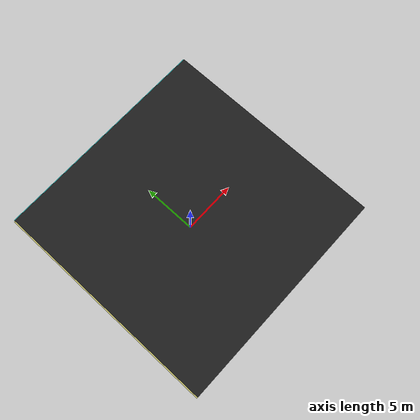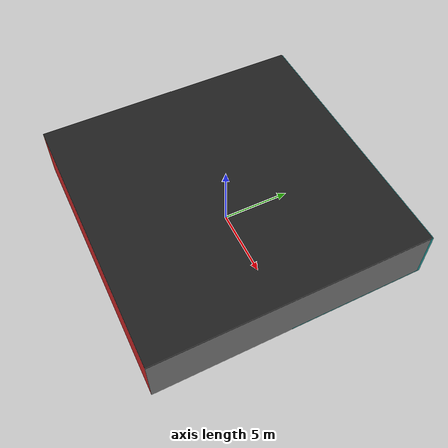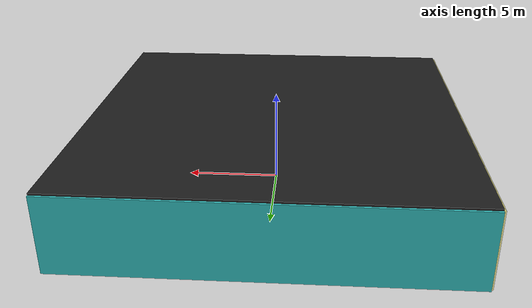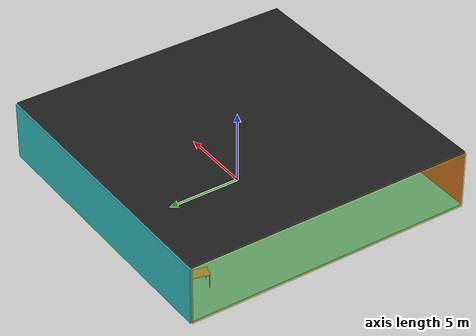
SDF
<sdf version="1.4">
 <world name="default">
  <physics type="ode">
   <max_step_size>0.001</max_step_size>
   <real_time_factor>1</real_time_factor>
   <real_time_update_rate>1000</real_time_update_rate>
   <gravity>0 0 -9.8</gravity>
  </physics>
  <scene><ambient>0.4 0.4 0.4 1</ambient><background>0.7 0.7 0.7 1</background><shadows>1</shadows></scene>
  <model name="Surrounding">
   <static>1</static>
   <link name="Ceiling">
    <collision name="Ceiling_Collision"><geometry><box><size>20 20 0.1</size></box></geometry></collision>
    <visual name="Ceiling_Visual">
     <geometry><box><size>20 20 0.1</size></box></geometry>
     <material>
      <script><uri>file://media/materials/scripts/gazebo.material</uri><name>Gazebo/FlatBlack</name></script>
     </material>
    </visual>
    <pose>0 0 4.05 0 0 0</pose>
   </link>
   <link name="Wall_South">
    <collision name="Wall_South_Collision">
     <geometry><box><size>20 0 4</size></box></geometry>
     <pose>0 0 2 0 -0 0</pose>
    </collision>
    <visual name="Wall_South_Visual">
     <pose>0 0 2 0 -0 0</pose>
     <geometry><box><size>20 0 4</size></box></geometry>
     <material>
      <script><uri>file://media/materials/scripts/gazebo.material</uri><name>Gazebo/RedGlow</name></script>
     </material>
    </visual>
    <velocity_decay><linear>0</linear><angular>0</angular></velocity_decay>
    <pose>0 -10 0 0 -0 0</pose>
   </link>
   <link name="Wall_East">
    <collision name="Wall_21_Collision">
     <geometry><box><size>20 0 4</size></box></geometry>
     <pose>0 0 2 0 -0 0</pose>
    </collision>
    <visual name="Wall_21_Visual">
     <pose>0 0 2 0 -0 0</pose>
     <geometry><box><size>20 0 4</size></box></geometry>
     <material>
      <script><uri>file://media/materials/scripts/gazebo.material</uri><name>Gazebo/GreyGradientSky</name></script>
     </material>
    </visual>
    <velocity_decay><linear>0</linear><angular>0</angular></velocity_decay>
    <pose>10 0 0 0 -0 1.5708</pose>
   </link>
   <link name="Wall_North">
    <collision name="Wall_22_Collision">
     <geometry><box><size>20 0.2 4</size></box></geometry>
     <pose>0 0 2 0 -0 0</pose>
    </collision>
    <visual name="Wall_22_Visual">
     <pose>0 0 2 0 -0 0</pose>
     <geometry><box><size>20 0.2 4</size></box></geometry>
     <material>
      <script><uri>file://media/materials/scripts/gazebo.material</uri><name>Gazebo/TurquoiseGlow</name></script>
     </material>
    </visual>
    <velocity_decay><linear>0</linear><angular>0</angular></velocity_decay>
    <pose>0 10 0 0 -0 0</pose>
   </link>
   <link name="Wall_West">
    <collision name="Wall_23_Collision">
     <geometry><box><size>20 0.2 4</size></box></geometry>
     <pose>0 0 2 0 -0 0</pose>
    </collision>
    <visual name="Wall_23_Visual">
     <pose>0 0 2 0 -0 0</pose>
     <geometry><box><size>20 0.2 4</size></box></geometry>
     <material>
      <script>
       <uri>file://media/materials/scripts/gazebo.material</uri>
       <name>Gazebo/YellowTransparent</name>
      </script>
     </material>
    </visual>
    <velocity_decay><linear>0</linear><angular>0</angular></velocity_decay>
    <pose>-10 0 0 0 0 -1.5708</pose>
   </link>
   <link name="Ground_link">
    <collision name="collision">
     <pose>0 0 .05 0 -0 0</pose>
     <geometry><box><size>20 20 0.1</size></box></geometry>
    </collision>
    <visual name="visual">
     <pose>0 0 .05 0 -0 0</pose>
     <geometry><box><size>20 20 0.1</size></box></geometry>
     <material>
      <script><uri>file://media/materials/scripts/gazebo.material</uri><name>Gazebo/TurquoiseGlow</name></script>
     </material>
    </visual>
   </link>
   <static>1</static>
  </model>
  <spherical_coordinates>
   <surface_model>EARTH_WGS84</surface_model>
   <latitude_deg>0</latitude_deg>
   <longitude_deg>0</longitude_deg>
   <elevation>0</elevation>
   <heading_deg>0</heading_deg>
  </spherical_coordinates>
  <light name="lightball_0" type="diffuse">
   <diffuse>0.8 0.8 0.8 1</diffuse>
   <specular>0.2 0.2 0.2 1</specular>
   <attenuation>
    <range>100</range>
    <constant>0.7</constant>
    <linear>0.01</linear>
    <quadratic>0.001</quadratic>
   </attenuation>
   <direction>-0.5 0.1 -0.9</direction>
   <pose>9.70963170075 6.9323993567 3.51747398623 0 0 0</pose>
  </light>
  <light name="lightball_1" type="diffuse">
   <diffuse>0.8 0.8 0.8 1</diffuse>
   <specular>0.2 0.2 0.2 1</specular>
   <attenuation>
    <range>100</range>
    <constant>0.7</constant>
    <linear>0.01</linear>
    <quadratic>0.001</quadratic>
   </attenuation>
   <direction>-0.5 0.1 -0.9</direction>
   <pose>-4.60195455969 -6.10732544751 2.39261892999 0 0 0</pose>
  </light>
  <light name="lightball_2" type="diffuse">
   <diffuse>0.8 0.8 0.8 1</diffuse>
   <specular>0.2 0.2 0.2 1</specular>
   <attenuation>
    <range>100</range>
    <constant>0.7</constant>
    <linear>0.01</linear>
    <quadratic>0.001</quadratic>
   </attenuation>
   <direction>-0.5 0.1 -0.9</direction>
   <pose>9.30337010018 7.30080217147 0.97101041877 0 0 0</pose>
  </light>
  <light name="lightball_3" type="diffuse">
   <diffuse>0.8 0.8 0.8 1</diffuse>
   <specular>0.2 0.2 0.2 1</specular>
   <attenuation>
    <range>100</range>
    <constant>0.7</constant>
    <linear>0.01</linear>
    <quadratic>0.001</quadratic>
   </attenuation>
   <direction>-0.5 0.1 -0.9</direction>
   <pose>0.526286571566 4.36188959171 1.07540431991 0 0 0</pose>
  </light>
  <light name="lightball_4" type="diffuse">
   <diffuse>0.8 0.8 0.8 1</diffuse>
   <specular>0.2 0.2 0.2 1</specular>
   <attenuation>
    <range>100</range>
    <constant>0.7</constant>
    <linear>0.01</linear>
    <quadratic>0.001</quadratic>
   </attenuation>
   <direction>-0.5 0.1 -0.9</direction>
   <pose>6.04631433249 2.47038029029 2.5782163434 0 0 0</pose>
  </light>
  <include><uri>model://table</uri><pose>-7.39359258069 7.93746692569 0 0 0 1.2858425754</pose></include>
  <include><uri>model://cabinet</uri><pose>-0.896469686574 -4.53317769924 0 0 0 0.776828707194</pose></include>
  <include>
   <uri>model://textured_shapes</uri>
   <pose>1.29131511537 6.89855449184 0 0 0 1.982610005</pose>
  </include>
  <include>
   <uri>model://construction_cone</uri>
   <pose>3.87151353664 -3.8829860146 0 0 0 2.30481240409</pose>
  </include>
 </world>
</sdf>

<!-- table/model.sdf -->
<sdf version="1.5">
  <model name="table">
    <static>true</static>
    <link name="link">
      <collision name="surface">
        <pose>0 0 1.0 0 0 0</pose>
        <geometry>
          <box>
            <size>1.5 0.8 0.03</size>
          </box>
        </geometry>
        <surface>
          <friction>
            <ode>
              <mu>0.6</mu>
              <mu2>0.6</mu2>
            </ode>
          </friction>
        </surface>
      </collision>
      <visual name="visual1">
        <pose>0 0 1.0 0 0 0</pose>
        <geometry>
          <box>
            <size>1.5 0.8 0.03</size>
          </box>
        </geometry>
        <material>
          <script>
            <uri>model://media/materials/scripts/gazebo.material</uri>
            <name>Gazebo/Wood</name>
          </script>
        </material>
      </visual>
      <collision name="front_left_leg">
        <pose>0.68 0.38 0.5 0 0 0</pose>
        <geometry>
          <cylinder>
            <radius>0.02</radius>
            <length>1.0</length>
          </cylinder>
        </geometry>
      </collision>
      <visual name="front_left_leg">
        <pose>0.68 0.38 0.5 0 0 0</pose>
        <geometry>
          <cylinder>
            <radius>0.02</radius>
            <length>1.0</length>
          </cylinder>
        </geometry>
        <material>
          <script>
            <uri>model://media/materials/scripts/gazebo.material</uri>
            <name>Gazebo/Grey</name>
          </script>
        </material>
      </visual>
      <collision name="front_right_leg">
        <pose>0.68 -0.38 0.5 0 0 0</pose>
        <geometry>
          <cylinder>
            <radius>0.02</radius>
            <length>1.0</length>
          </cylinder>
        </geometry>
      </collision>
      <visual name="front_right_leg">
        <pose>0.68 -0.38 0.5 0 0 0</pose>
        <geometry>
          <cylinder>
            <radius>0.02</radius>
            <length>1.0</length>
          </cylinder>
        </geometry>
        <material>
          <script>
            <uri>model://media/materials/scripts/gazebo.material</uri>
            <name>Gazebo/Grey</name>
          </script>
        </material>
      </visual>
      <collision name="back_right_leg">
        <pose>-0.68 -0.38 0.5 0 0 0</pose>
        <geometry>
          <cylinder>
            <radius>0.02</radius>
            <length>1.0</length>
          </cylinder>
        </geometry>
      </collision>
      <visual name="back_right_leg">
        <pose>-0.68 -0.38 0.5 0 0 0</pose>
        <geometry>
          <cylinder>
            <radius>0.02</radius>
            <length>1.0</length>
          </cylinder>
        </geometry>
        <material>
          <script>
            <uri>model://media/materials/scripts/gazebo.material</uri>
            <name>Gazebo/Grey</name>
          </script>
        </material>
      </visual>
      <collision name="back_left_leg">
        <pose>-0.68 0.38 0.5 0 0 0</pose>
        <geometry>
          <cylinder>
            <radius>0.02</radius>
            <length>1.0</length>
          </cylinder>
        </geometry>
      </collision>
      <visual name="back_left_leg">
        <pose>-0.68 0.38 0.5 0 0 0</pose>
        <geometry>
          <cylinder>
            <radius>0.02</radius>
            <length>1.0</length>
          </cylinder>
        </geometry>
        <material>
          <script>
            <uri>model://media/materials/scripts/gazebo.material</uri>
            <name>Gazebo/Grey</name>
          </script>
        </material>
      </visual>
    </link>
  </model>
</sdf>

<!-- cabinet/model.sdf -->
<sdf version="1.5">
  <model name="cabinet">
    <static>true</static>
    <link name="cabinet_bottom_plate">
      <inertial>
        <pose>0 0 -1 0 0 0</pose>
        <inertia>
          <ixx>2.050000</ixx>
          <ixy>0</ixy>
          <ixz>0</ixz>
          <iyy>2.050000</iyy>
          <iyz>0</iyz>
          <izz>2.050000</izz>
        </inertia>
        <mass>25.000000</mass>
      </inertial>
      <collision name="cabinet_bottom_plate_geom">
        <pose>0 0 0.010000 0 0 0</pose>
        <geometry>
          <box>
            <size>0.450000 0.450000 0.020000</size>
          </box>
        </geometry>
      </collision>
      <visual name="cabinet_bottom_plate_geom_visual">
        <pose>0 0 0.010000 0 0 0</pose>
        <geometry>
          <box>
            <size>0.450000 0.450000 0.020000</size>
          </box>
        </geometry>
        <material>
          <script>
            <uri>model://media/materials/scripts/gazebo.material</uri>
            <name>Gazebo/Wood</name>
          </script>
        </material>
      </visual>
      <collision name="cabinet_bottom_plate_geom_cabinet_back_plate">
        <pose>0.235000 0 0.510000 0 0 0</pose>
        <geometry>
          <box>
            <size>0.020000 0.450000 1.020000</size>
          </box>
        </geometry>
      </collision>
      <visual name="cabinet_bottom_plate_geom_cabinet_back_plate_visual">
        <pose>0.235000 0 0.510000 0 0 0</pose>
        <geometry>
          <box>
            <size>0.020000 0.450000 1.020000</size>
          </box>
        </geometry>
        <material>
          <script>
            <uri>model://media/materials/scripts/gazebo.material</uri>
            <name>Gazebo/Wood</name>
          </script>
        </material>
      </visual>
      <collision name="cabinet_bottom_plate_geom_cabinet_left_plate">
        <pose>0 0.235000 0.510000 0 0 0</pose>
        <geometry>
          <box>
            <size>0.450000 0.020000 1.020000</size>
          </box>
        </geometry>
      </collision>
      <visual name="cabinet_bottom_plate_geom_cabinet_left_plate_visual">
        <pose>0 0.235000 0.510000 0 0 0</pose>
        <geometry>
          <box>
            <size>0.450000 0.020000 1.020000</size>
          </box>
        </geometry>
        <material>
          <script>
            <uri>model://media/materials/scripts/gazebo.material</uri>
            <name>Gazebo/Wood</name>
          </script>
        </material>
      </visual>
      <collision name="cabinet_bottom_plate_geom_cabinet_middle_plate">
        <pose>0 0 0.510000 0 0 0</pose>
        <geometry>
          <box>
            <size>0.450000 0.450000 0.020000</size>
          </box>
        </geometry>
      </collision>
      <visual name="cabinet_bottom_plate_geom_cabinet_middle_plate_visual">
        <pose>0 0 0.510000 0 0 0</pose>
        <geometry>
          <box>
            <size>0.450000 0.450000 0.020000</size>
          </box>
        </geometry>
        <material>
          <script>
            <uri>model://media/materials/scripts/gazebo.material</uri>
            <name>Gazebo/Wood</name>
          </script>
        </material>
      </visual>
      <collision name="cabinet_bottom_plate_geom_cabinet_right_plate">
        <pose>0 -0.235000 0.510000 0 0 0</pose>
        <geometry>
          <box>
            <size>0.450000 0.020000 1.020000</size>
          </box>
        </geometry>
      </collision>
      <visual name="cabinet_bottom_plate_geom_cabinet_right_plate_visual">
        <pose>0 -0.235000 0.510000 0 0 0</pose>
        <geometry>
          <box>
            <size>0.450000 0.020000 1.020000</size>
          </box>
        </geometry>
        <material>
          <script>
            <uri>model://media/materials/scripts/gazebo.material</uri>
            <name>Gazebo/Wood</name>
          </script>
        </material>
      </visual>
      <collision name="cabinet_bottom_plate_geom_cabinet_top_plate">
        <pose>0 0 1.010000 0 0 0</pose>
        <geometry>
          <box>
            <size>0.450000 0.450000 0.020000</size>
          </box>
        </geometry>
      </collision>
      <visual name="cabinet_bottom_plate_geom_cabinet_top_plate_visual">
        <pose>0 0 1.010000 0 0 0</pose>
        <geometry>
          <box>
            <size>0.450000 0.450000 0.020000</size>
          </box>
        </geometry>
        <material>
          <script>
            <uri>model://media/materials/scripts/gazebo.material</uri>
            <name>Gazebo/Wood</name>
          </script>
        </material>
      </visual>
    </link>
  </model>
</sdf>

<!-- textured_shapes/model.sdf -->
<sdf version="1.6">
  <model name="textured_shapes">
    <pose>0 0 0.5 0 0 0</pose>
    <link name="box">
      <pose>0 -1.5 0 0 0 0</pose>
      <collision name="collision">
        <geometry>
          <box>
            <size>1 1 1</size>
          </box>
        </geometry>
      </collision>
      <visual name="visual">
        <geometry>
          <box>
            <size>1 1 1</size>
          </box>
        </geometry>
        <material>
          <script>
            <uri>model://../model_source/models/textured_shapes/materials/scripts</uri>
            <uri>model://../model_source/models/textured_shapes/materials/textures</uri>
            <name>TexturedShape/Squares</name>
          </script>
        </material>
      </visual>
    </link>
    <link name="sphere">
      <collision name="collision">
        <geometry>
          <sphere>
            <radius>0.5</radius>
          </sphere>
        </geometry>
      </collision>
      <visual name="visual">
        <geometry>
          <sphere>
            <radius>0.5</radius>
          </sphere>
        </geometry>
        <material>
          <script>
            <uri>model://../model_source/models/textured_shapes/materials/scripts</uri>
            <uri>model://../model_source/models/textured_shapes/materials/textures</uri>
            <name>TexturedShape/Squares</name>
          </script>
        </material>
      </visual>
    </link>
    <link name="cylinder">
      <pose>0 1.5 0 0 0 0</pose>
      <collision name="collision">
        <geometry>
          <cylinder>
            <radius>0.5</radius>
            <length>1</length>
          </cylinder>
        </geometry>
      </collision>
      <visual name="visual">
        <geometry>
          <cylinder>
            <radius>0.5</radius>
            <length>1</length>
          </cylinder>
        </geometry>
        <material>
          <script>
            <uri>model://../model_source/models/textured_shapes/materials/scripts</uri>
            <uri>model://../model_source/models/textured_shapes/materials/textures</uri>
            <name>TexturedShape/Squares</name>
          </script>
        </material>
      </visual>
    </link>
  </model>
</sdf>

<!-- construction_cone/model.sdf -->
<sdf version="1.5">
  <model name="Construction Cone">
    <link name="link">
      <collision name="collision">
        <geometry>
          <mesh>
            <scale>10 10 10</scale>
            <uri>file://isr-testbed/construction_cone/meshes/construction_cone.dae</uri>
          </mesh>
        </geometry>
      </collision>
      <visual name="visual">
        <geometry>
          <mesh>
            <scale>10 10 10</scale>
            <uri>file://isr-testbed/construction_cone/meshes/construction_cone.dae</uri>
          </mesh>
        </geometry>
      </visual>
    </link>
  </model>
</sdf>
